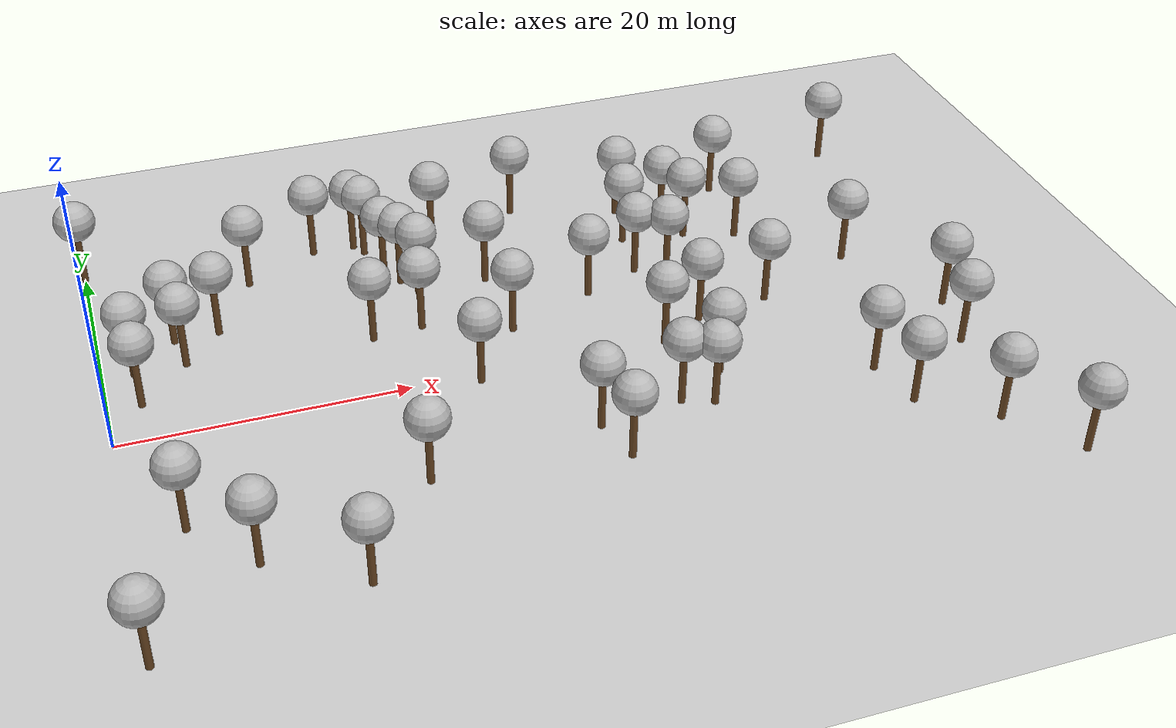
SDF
<sdf version='1.7'>
            <world name='default'>
                <light name='sun' type='directional'>
                <cast_shadows>1</cast_shadows>
                <pose>0 0 10 0 -0 0</pose>
                <diffuse>0.8 0.8 0.8 1</diffuse>
                <specular>0.2 0.2 0.2 1</specular>
                <attenuation>
                    <range>1000</range>
                    <constant>0.9</constant>
                    <linear>0.01</linear>
                    <quadratic>0.001</quadratic>
                </attenuation>
                <direction>-0.5 0.1 -0.9</direction>
                <spot>
                    <inner_angle>0</inner_angle>
                    <outer_angle>0</outer_angle>
                    <falloff>0</falloff>
                </spot>
                </light>
                <model name='ground_plane'>
                <static>1</static>
                <link name='link'>
                    <collision name='collision'>
                    <geometry>
                        <plane>
                        <normal>0 0 1</normal>
                        <size>100 100</size>
                        </plane>
                    </geometry>
                    <surface>
                        <contact>
                        <collide_bitmask>65535</collide_bitmask>
                        <ode/>
                        </contact>
                        <friction>
                        <ode>
                            <mu>100</mu>
                            <mu2>50</mu2>
                        </ode>
                        <torsional>
                            <ode/>
                        </torsional>
                        </friction>
                        <bounce/>
                    </surface>
                    <max_contacts>10</max_contacts>
                    </collision>
                    <visual name='visual'>
                    <cast_shadows>0</cast_shadows>
                    <geometry>
                        <plane>
                        <normal>0 0 1</normal>
                        <size>100 100</size>
                        </plane>
                    </geometry>
                    <material>
                        <script>
                        <uri>file://media/materials/scripts/gazebo.material</uri>
                        <name>Gazebo/Grey</name>
                        </script>
                    </material>
                    </visual>
                    <self_collide>0</self_collide>
                    <enable_wind>0</enable_wind>
                    <kinematic>0</kinematic>
                </link>
                </model>
                <gravity>0 0 -9.8</gravity>
                <magnetic_field>6e-06 2.3e-05 -4.2e-05</magnetic_field>
                <atmosphere type='adiabatic'/>
                <physics type='ode'>
                <max_step_size>0.001</max_step_size>
                <real_time_factor>1</real_time_factor>
                <real_time_update_rate>1000</real_time_update_rate>
                </physics>
                <scene>
                <ambient>0.4 0.4 0.4 1</ambient>
                <background>0.7 0.7 0.7 1</background>
                <shadows>1</shadows>
                </scene>
                <wind/>
                <spherical_coordinates>
                <surface_model>EARTH_WGS84</surface_model>
                <latitude_deg>0</latitude_deg>
                <longitude_deg>0</longitude_deg>
                <elevation>0</elevation>
                <heading_deg>0</heading_deg>
                </spherical_coordinates>

    <model name='tree_simple498'>
      <static>1</static>
      <link name='link'>
        <pose frame=''>0 0 0.1 0 -0 0</pose>
        <collision name='collision_trunk'>
          <pose frame=''>0 0 2 0 -0 0</pose>
          <geometry>
            <cylinder>
              <radius>0.25</radius>
              <length>4</length>
            </cylinder>
          </geometry>
        </collision>
        <collision name='collision_treetop'>
          <pose frame=''>0 0 5.2 0 -0 0</pose>
          <geometry>
            <sphere>
              <radius>1.5</radius>
            </sphere>
          </geometry>
        </collision>
        <visual name='trunk'>
          <pose frame=''>0 0 2 0 -0 0</pose>
          <geometry>
            <cylinder>
              <radius>0.25</radius>
              <length>4</length>
            </cylinder>
          </geometry>
          <material>
            <script>
              <uri>model://tree_simple/scripts</uri>
              <uri>model://tree_simple/materials/textures</uri>
              <name>TreeSimple/Trunk</name>
            </script>
          </material>
        </visual>
        <visual name='treetop'>
          <pose frame=''>0 0 5.2 0 -0 0</pose>
          <geometry>
            <sphere>
              <radius>1.5</radius>
            </sphere>
          </geometry>
          <material>
            <script>
              <uri>model://tree_simple/scripts</uri>
              <uri>model://tree_simple/materials/textures</uri>
              <name>TreeSimple/Treetop</name>
            </script>
          </material>
        </visual>
        <self_collide>0</self_collide>
        <kinematic>0</kinematic>
      </link>
      <pose frame=''>0.0 20.0 0 0 -0 0</pose>
    </model>
        <model name='tree_simple497'>
      <static>1</static>
      <link name='link'>
        <pose frame=''>0 0 0.1 0 -0 0</pose>
        <collision name='collision_trunk'>
          <pose frame=''>0 0 2 0 -0 0</pose>
          <geometry>
            <cylinder>
              <radius>0.25</radius>
              <length>4</length>
            </cylinder>
          </geometry>
        </collision>
        <collision name='collision_treetop'>
          <pose frame=''>0 0 5.2 0 -0 0</pose>
          <geometry>
            <sphere>
              <radius>1.5</radius>
            </sphere>
          </geometry>
        </collision>
        <visual name='trunk'>
          <pose frame=''>0 0 2 0 -0 0</pose>
          <geometry>
            <cylinder>
              <radius>0.25</radius>
              <length>4</length>
            </cylinder>
          </geometry>
          <material>
            <script>
              <uri>model://tree_simple/scripts</uri>
              <uri>model://tree_simple/materials/textures</uri>
              <name>TreeSimple/Trunk</name>
            </script>
          </material>
        </visual>
        <visual name='treetop'>
          <pose frame=''>0 0 5.2 0 -0 0</pose>
          <geometry>
            <sphere>
              <radius>1.5</radius>
            </sphere>
          </geometry>
          <material>
            <script>
              <uri>model://tree_simple/scripts</uri>
              <uri>model://tree_simple/materials/textures</uri>
              <name>TreeSimple/Treetop</name>
            </script>
          </material>
        </visual>
        <self_collide>0</self_collide>
        <kinematic>0</kinematic>
      </link>
      <pose frame=''>0.0 -20.0 0 0 -0 0</pose>
    </model>
        <model name='tree_simple496'>
      <static>1</static>
      <link name='link'>
        <pose frame=''>0 0 0.1 0 -0 0</pose>
        <collision name='collision_trunk'>
          <pose frame=''>0 0 2 0 -0 0</pose>
          <geometry>
            <cylinder>
              <radius>0.25</radius>
              <length>4</length>
            </cylinder>
          </geometry>
        </collision>
        <collision name='collision_treetop'>
          <pose frame=''>0 0 5.2 0 -0 0</pose>
          <geometry>
            <sphere>
              <radius>1.5</radius>
            </sphere>
          </geometry>
        </collision>
        <visual name='trunk'>
          <pose frame=''>0 0 2 0 -0 0</pose>
          <geometry>
            <cylinder>
              <radius>0.25</radius>
              <length>4</length>
            </cylinder>
          </geometry>
          <material>
            <script>
              <uri>model://tree_simple/scripts</uri>
              <uri>model://tree_simple/materials/textures</uri>
              <name>TreeSimple/Trunk</name>
            </script>
          </material>
        </visual>
        <visual name='treetop'>
          <pose frame=''>0 0 5.2 0 -0 0</pose>
          <geometry>
            <sphere>
              <radius>1.5</radius>
            </sphere>
          </geometry>
          <material>
            <script>
              <uri>model://tree_simple/scripts</uri>
              <uri>model://tree_simple/materials/textures</uri>
              <name>TreeSimple/Treetop</name>
            </script>
          </material>
        </visual>
        <self_collide>0</self_collide>
        <kinematic>0</kinematic>
      </link>
      <pose frame=''>60.0 20.0 0 0 -0 0</pose>
    </model>
        <model name='tree_simple495'>
      <static>1</static>
      <link name='link'>
        <pose frame=''>0 0 0.1 0 -0 0</pose>
        <collision name='collision_trunk'>
          <pose frame=''>0 0 2 0 -0 0</pose>
          <geometry>
            <cylinder>
              <radius>0.25</radius>
              <length>4</length>
            </cylinder>
          </geometry>
        </collision>
        <collision name='collision_treetop'>
          <pose frame=''>0 0 5.2 0 -0 0</pose>
          <geometry>
            <sphere>
              <radius>1.5</radius>
            </sphere>
          </geometry>
        </collision>
        <visual name='trunk'>
          <pose frame=''>0 0 2 0 -0 0</pose>
          <geometry>
            <cylinder>
              <radius>0.25</radius>
              <length>4</length>
            </cylinder>
          </geometry>
          <material>
            <script>
              <uri>model://tree_simple/scripts</uri>
              <uri>model://tree_simple/materials/textures</uri>
              <name>TreeSimple/Trunk</name>
            </script>
          </material>
        </visual>
        <visual name='treetop'>
          <pose frame=''>0 0 5.2 0 -0 0</pose>
          <geometry>
            <sphere>
              <radius>1.5</radius>
            </sphere>
          </geometry>
          <material>
            <script>
              <uri>model://tree_simple/scripts</uri>
              <uri>model://tree_simple/materials/textures</uri>
              <name>TreeSimple/Treetop</name>
            </script>
          </material>
        </visual>
        <self_collide>0</self_collide>
        <kinematic>0</kinematic>
      </link>
      <pose frame=''>60.0 -20.0 0 0 -0 0</pose>
    </model>
    <model name="tree_5_0"><pose frame="">40.6 -4.87 0 0 -0 0</pose><static>1</static><link name="link"><pose frame="">0 0 0.1 0 -0 0</pose><collision name="collision_trunk"><pose frame="">0 0 2 0 -0 0</pose><geometry><cylinder><radius>0.25</radius><length>4</length></cylinder></geometry></collision><collision name="collision_treetop"><pose frame="">0 0 5.2 0 -0 0</pose><geometry><sphere><radius>1.5</radius></sphere></geometry></collision><visual name="trunk"><pose frame="">0 0 2 0 -0 0</pose><geometry><cylinder><radius>0.25</radius><length>4</length></cylinder></geometry><material><script><uri>model://tree_simple/scripts</uri><uri>model://tree_simple/materials/textures</uri><name>TreeSimple/Trunk</name></script></material></visual><visual name="treetop"><pose frame="">0 0 5.2 0 -0 0</pose><geometry><sphere><radius>1.5</radius></sphere></geometry><material><script><uri>model://tree_simple/scripts</uri><uri>model://tree_simple/materials/textures</uri><name>TreeSimple/Treetop</name></script></material></visual><self_collide>0</self_collide><kinematic>0</kinematic></link></model><model name="tree_5_1"><pose frame="">21.35 13.83 0 0 -0 0</pose><static>1</static><link name="link"><pose frame="">0 0 0.1 0 -0 0</pose><collision name="collision_trunk"><pose frame="">0 0 2 0 -0 0</pose><geometry><cylinder><radius>0.25</radius><length>4</length></cylinder></geometry></collision><collision name="collision_treetop"><pose frame="">0 0 5.2 0 -0 0</pose><geometry><sphere><radius>1.5</radius></sphere></geometry></collision><visual name="trunk"><pose frame="">0 0 2 0 -0 0</pose><geometry><cylinder><radius>0.25</radius><length>4</length></cylinder></geometry><material><script><uri>model://tree_simple/scripts</uri><uri>model://tree_simple/materials/textures</uri><name>TreeSimple/Trunk</name></script></material></visual><visual name="treetop"><pose frame="">0 0 5.2 0 -0 0</pose><geometry><sphere><radius>1.5</radius></sphere></geometry><material><script><uri>model://tree_simple/scripts</uri><uri>model://tree_simple/materials/textures</uri><name>TreeSimple/Treetop</name></script></material></visual><self_collide>0</self_collide><kinematic>0</kinematic></link></model><model name="tree_5_2"><pose frame="">51.8 -11.95 0 0 -0 0</pose><static>1</static><link name="link"><pose frame="">0 0 0.1 0 -0 0</pose><collision name="collision_trunk"><pose frame="">0 0 2 0 -0 0</pose><geometry><cylinder><radius>0.25</radius><length>4</length></cylinder></geometry></collision><collision name="collision_treetop"><pose frame="">0 0 5.2 0 -0 0</pose><geometry><sphere><radius>1.5</radius></sphere></geometry></collision><visual name="trunk"><pose frame="">0 0 2 0 -0 0</pose><geometry><cylinder><radius>0.25</radius><length>4</length></cylinder></geometry><material><script><uri>model://tree_simple/scripts</uri><uri>model://tree_simple/materials/textures</uri><name>TreeSimple/Trunk</name></script></material></visual><visual name="treetop"><pose frame="">0 0 5.2 0 -0 0</pose><geometry><sphere><radius>1.5</radius></sphere></geometry><material><script><uri>model://tree_simple/scripts</uri><uri>model://tree_simple/materials/textures</uri><name>TreeSimple/Treetop</name></script></material></visual><self_collide>0</self_collide><kinematic>0</kinematic></link></model><model name="tree_5_3"><pose frame="">48.45 10.85 0 0 -0 0</pose><static>1</static><link name="link"><pose frame="">0 0 0.1 0 -0 0</pose><collision name="collision_trunk"><pose frame="">0 0 2 0 -0 0</pose><geometry><cylinder><radius>0.25</radius><length>4</length></cylinder></geometry></collision><collision name="collision_treetop"><pose frame="">0 0 5.2 0 -0 0</pose><geometry><sphere><radius>1.5</radius></sphere></geometry></collision><visual name="trunk"><pose frame="">0 0 2 0 -0 0</pose><geometry><cylinder><radius>0.25</radius><length>4</length></cylinder></geometry><material><script><uri>model://tree_simple/scripts</uri><uri>model://tree_simple/materials/textures</uri><name>TreeSimple/Trunk</name></script></material></visual><visual name="treetop"><pose frame="">0 0 5.2 0 -0 0</pose><geometry><sphere><radius>1.5</radius></sphere></geometry><material><script><uri>model://tree_simple/scripts</uri><uri>model://tree_simple/materials/textures</uri><name>TreeSimple/Treetop</name></script></material></visual><self_collide>0</self_collide><kinematic>0</kinematic></link></model><model name="tree_5_4"><pose frame="">44.68 12.06 0 0 -0 0</pose><static>1</static><link name="link"><pose frame="">0 0 0.1 0 -0 0</pose><collision name="collision_trunk"><pose frame="">0 0 2 0 -0 0</pose><geometry><cylinder><radius>0.25</radius><length>4</length></cylinder></geometry></collision><collision name="collision_treetop"><pose frame="">0 0 5.2 0 -0 0</pose><geometry><sphere><radius>1.5</radius></sphere></geometry></collision><visual name="trunk"><pose frame="">0 0 2 0 -0 0</pose><geometry><cylinder><radius>0.25</radius><length>4</length></cylinder></geometry><material><script><uri>model://tree_simple/scripts</uri><uri>model://tree_simple/materials/textures</uri><name>TreeSimple/Trunk</name></script></material></visual><visual name="treetop"><pose frame="">0 0 5.2 0 -0 0</pose><geometry><sphere><radius>1.5</radius></sphere></geometry><material><script><uri>model://tree_simple/scripts</uri><uri>model://tree_simple/materials/textures</uri><name>TreeSimple/Treetop</name></script></material></visual><self_collide>0</self_collide><kinematic>0</kinematic></link></model><model name="tree_5_5"><pose frame="">2.17 7.18 0 0 -0 0</pose><static>1</static><link name="link"><pose frame="">0 0 0.1 0 -0 0</pose><collision name="collision_trunk"><pose frame="">0 0 2 0 -0 0</pose><geometry><cylinder><radius>0.25</radius><length>4</length></cylinder></geometry></collision><collision name="collision_treetop"><pose frame="">0 0 5.2 0 -0 0</pose><geometry><sphere><radius>1.5</radius></sphere></geometry></collision><visual name="trunk"><pose frame="">0 0 2 0 -0 0</pose><geometry><cylinder><radius>0.25</radius><length>4</length></cylinder></geometry><material><script><uri>model://tree_simple/scripts</uri><uri>model://tree_simple/materials/textures</uri><name>TreeSimple/Trunk</name></script></material></visual><visual name="treetop"><pose frame="">0 0 5.2 0 -0 0</pose><geometry><sphere><radius>1.5</radius></sphere></geometry><material><script><uri>model://tree_simple/scripts</uri><uri>model://tree_simple/materials/textures</uri><name>TreeSimple/Treetop</name></script></material></visual><self_collide>0</self_collide><kinematic>0</kinematic></link></model><model name="tree_5_6"><pose frame="">23.23 10.79 0 0 -0 0</pose><static>1</static><link name="link"><pose frame="">0 0 0.1 0 -0 0</pose><collision name="collision_trunk"><pose frame="">0 0 2 0 -0 0</pose><geometry><cylinder><radius>0.25</radius><length>4</length></cylinder></geometry></collision><collision name="collision_treetop"><pose frame="">0 0 5.2 0 -0 0</pose><geometry><sphere><radius>1.5</radius></sphere></geometry></collision><visual name="trunk"><pose frame="">0 0 2 0 -0 0</pose><geometry><cylinder><radius>0.25</radius><length>4</length></cylinder></geometry><material><script><uri>model://tree_simple/scripts</uri><uri>model://tree_simple/materials/textures</uri><name>TreeSimple/Trunk</name></script></material></visual><visual name="treetop"><pose frame="">0 0 5.2 0 -0 0</pose><geometry><sphere><radius>1.5</radius></sphere></geometry><material><script><uri>model://tree_simple/scripts</uri><uri>model://tree_simple/materials/textures</uri><name>TreeSimple/Treetop</name></script></material></visual><self_collide>0</self_collide><kinematic>0</kinematic></link></model><model name="tree_5_7"><pose frame="">22.3 12.55 0 0 -0 0</pose><static>1</static><link name="link"><pose frame="">0 0 0.1 0 -0 0</pose><collision name="collision_trunk"><pose frame="">0 0 2 0 -0 0</pose><geometry><cylinder><radius>0.25</radius><length>4</length></cylinder></geometry></collision><collision name="collision_treetop"><pose frame="">0 0 5.2 0 -0 0</pose><geometry><sphere><radius>1.5</radius></sphere></geometry></collision><visual name="trunk"><pose frame="">0 0 2 0 -0 0</pose><geometry><cylinder><radius>0.25</radius><length>4</length></cylinder></geometry><material><script><uri>model://tree_simple/scripts</uri><uri>model://tree_simple/materials/textures</uri><name>TreeSimple/Trunk</name></script></material></visual><visual name="treetop"><pose frame="">0 0 5.2 0 -0 0</pose><geometry><sphere><radius>1.5</radius></sphere></geometry><material><script><uri>model://tree_simple/scripts</uri><uri>model://tree_simple/materials/textures</uri><name>TreeSimple/Treetop</name></script></material></visual><self_collide>0</self_collide><kinematic>0</kinematic></link></model><model name="tree_5_8"><pose frame="">20.58 17.2 0 0 -0 0</pose><static>1</static><link name="link"><pose frame="">0 0 0.1 0 -0 0</pose><collision name="collision_trunk"><pose frame="">0 0 2 0 -0 0</pose><geometry><cylinder><radius>0.25</radius><length>4</length></cylinder></geometry></collision><collision name="collision_treetop"><pose frame="">0 0 5.2 0 -0 0</pose><geometry><sphere><radius>1.5</radius></sphere></geometry></collision><visual name="trunk"><pose frame="">0 0 2 0 -0 0</pose><geometry><cylinder><radius>0.25</radius><length>4</length></cylinder></geometry><material><script><uri>model://tree_simple/scripts</uri><uri>model://tree_simple/materials/textures</uri><name>TreeSimple/Trunk</name></script></material></visual><visual name="treetop"><pose frame="">0 0 5.2 0 -0 0</pose><geometry><sphere><radius>1.5</radius></sphere></geometry><material><script><uri>model://tree_simple/scripts</uri><uri>model://tree_simple/materials/textures</uri><name>TreeSimple/Treetop</name></script></material></visual><self_collide>0</self_collide><kinematic>0</kinematic></link></model><model name="tree_5_9"><pose frame="">2.28 3.62 0 0 -0 0</pose><static>1</static><link name="link"><pose frame="">0 0 0.1 0 -0 0</pose><collision name="collision_trunk"><pose frame="">0 0 2 0 -0 0</pose><geometry><cylinder><radius>0.25</radius><length>4</length></cylinder></geometry></collision><collision name="collision_treetop"><pose frame="">0 0 5.2 0 -0 0</pose><geometry><sphere><radius>1.5</radius></sphere></geometry></collision><visual name="trunk"><pose frame="">0 0 2 0 -0 0</pose><geometry><cylinder><radius>0.25</radius><length>4</length></cylinder></geometry><material><script><uri>model://tree_simple/scripts</uri><uri>model://tree_simple/materials/textures</uri><name>TreeSimple/Trunk</name></script></material></visual><visual name="treetop"><pose frame="">0 0 5.2 0 -0 0</pose><geometry><sphere><radius>1.5</radius></sphere></geometry><material><script><uri>model://tree_simple/scripts</uri><uri>model://tree_simple/materials/textures</uri><name>TreeSimple/Treetop</name></script></material></visual><self_collide>0</self_collide><kinematic>0</kinematic></link></model><model name="tree_5_10"><pose frame="">38.21 -0.61 0 0 -0 0</pose><static>1</static><link name="link"><pose frame="">0 0 0.1 0 -0 0</pose><collision name="collision_trunk"><pose frame="">0 0 2 0 -0 0</pose><geometry><cylinder><radius>0.25</radius><length>4</length></cylinder></geometry></collision><collision name="collision_treetop"><pose frame="">0 0 5.2 0 -0 0</pose><geometry><sphere><radius>1.5</radius></sphere></geometry></collision><visual name="trunk"><pose frame="">0 0 2 0 -0 0</pose><geometry><cylinder><radius>0.25</radius><length>4</length></cylinder></geometry><material><script><uri>model://tree_simple/scripts</uri><uri>model://tree_simple/materials/textures</uri><name>TreeSimple/Trunk</name></script></material></visual><visual name="treetop"><pose frame="">0 0 5.2 0 -0 0</pose><geometry><sphere><radius>1.5</radius></sphere></geometry><material><script><uri>model://tree_simple/scripts</uri><uri>model://tree_simple/materials/textures</uri><name>TreeSimple/Treetop</name></script></material></visual><self_collide>0</self_collide><kinematic>0</kinematic></link></model><model name="tree_5_11"><pose frame="">25.99 17.57 0 0 -0 0</pose><static>1</static><link name="link"><pose frame="">0 0 0.1 0 -0 0</pose><collision name="collision_trunk"><pose frame="">0 0 2 0 -0 0</pose><geometry><cylinder><radius>0.25</radius><length>4</length></cylinder></geometry></collision><collision name="collision_treetop"><pose frame="">0 0 5.2 0 -0 0</pose><geometry><sphere><radius>1.5</radius></sphere></geometry></collision><visual name="trunk"><pose frame="">0 0 2 0 -0 0</pose><geometry><cylinder><radius>0.25</radius><length>4</length></cylinder></geometry><material><script><uri>model://tree_simple/scripts</uri><uri>model://tree_simple/materials/textures</uri><name>TreeSimple/Trunk</name></script></material></visual><visual name="treetop"><pose frame="">0 0 5.2 0 -0 0</pose><geometry><sphere><radius>1.5</radius></sphere></geometry><material><script><uri>model://tree_simple/scripts</uri><uri>model://tree_simple/materials/textures</uri><name>TreeSimple/Treetop</name></script></material></visual><self_collide>0</self_collide><kinematic>0</kinematic></link></model><model name="tree_5_12"><pose frame="">5.31 10.15 0 0 -0 0</pose><static>1</static><link name="link"><pose frame="">0 0 0.1 0 -0 0</pose><collision name="collision_trunk"><pose frame="">0 0 2 0 -0 0</pose><geometry><cylinder><radius>0.25</radius><length>4</length></cylinder></geometry></collision><collision name="collision_treetop"><pose frame="">0 0 5.2 0 -0 0</pose><geometry><sphere><radius>1.5</radius></sphere></geometry></collision><visual name="trunk"><pose frame="">0 0 2 0 -0 0</pose><geometry><cylinder><radius>0.25</radius><length>4</length></cylinder></geometry><material><script><uri>model://tree_simple/scripts</uri><uri>model://tree_simple/materials/textures</uri><name>TreeSimple/Trunk</name></script></material></visual><visual name="treetop"><pose frame="">0 0 5.2 0 -0 0</pose><geometry><sphere><radius>1.5</radius></sphere></geometry><material><script><uri>model://tree_simple/scripts</uri><uri>model://tree_simple/materials/textures</uri><name>TreeSimple/Treetop</name></script></material></visual><self_collide>0</self_collide><kinematic>0</kinematic></link></model><model name="tree_5_13"><pose frame="">28.46 4.15 0 0 -0 0</pose><static>1</static><link name="link"><pose frame="">0 0 0.1 0 -0 0</pose><collision name="collision_trunk"><pose frame="">0 0 2 0 -0 0</pose><geometry><cylinder><radius>0.25</radius><length>4</length></cylinder></geometry></collision><collision name="collision_treetop"><pose frame="">0 0 5.2 0 -0 0</pose><geometry><sphere><radius>1.5</radius></sphere></geometry></collision><visual name="trunk"><pose frame="">0 0 2 0 -0 0</pose><geometry><cylinder><radius>0.25</radius><length>4</length></cylinder></geometry><material><script><uri>model://tree_simple/scripts</uri><uri>model://tree_simple/materials/textures</uri><name>TreeSimple/Trunk</name></script></material></visual><visual name="treetop"><pose frame="">0 0 5.2 0 -0 0</pose><geometry><sphere><radius>1.5</radius></sphere></geometry><material><script><uri>model://tree_simple/scripts</uri><uri>model://tree_simple/materials/textures</uri><name>TreeSimple/Treetop</name></script></material></visual><self_collide>0</self_collide><kinematic>0</kinematic></link></model><model name="tree_5_14"><pose frame="">38.95 -8.0 0 0 -0 0</pose><static>1</static><link name="link"><pose frame="">0 0 0.1 0 -0 0</pose><collision name="collision_trunk"><pose frame="">0 0 2 0 -0 0</pose><geometry><cylinder><radius>0.25</radius><length>4</length></cylinder></geometry></collision><collision name="collision_treetop"><pose frame="">0 0 5.2 0 -0 0</pose><geometry><sphere><radius>1.5</radius></sphere></geometry></collision><visual name="trunk"><pose frame="">0 0 2 0 -0 0</pose><geometry><cylinder><radius>0.25</radius><length>4</length></cylinder></geometry><material><script><uri>model://tree_simple/scripts</uri><uri>model://tree_simple/materials/textures</uri><name>TreeSimple/Trunk</name></script></material></visual><visual name="treetop"><pose frame="">0 0 5.2 0 -0 0</pose><geometry><sphere><radius>1.5</radius></sphere></geometry><material><script><uri>model://tree_simple/scripts</uri><uri>model://tree_simple/materials/textures</uri><name>TreeSimple/Treetop</name></script></material></visual><self_collide>0</self_collide><kinematic>0</kinematic></link></model><model name="tree_5_15"><pose frame="">30.85 -8.01 0 0 -0 0</pose><static>1</static><link name="link"><pose frame="">0 0 0.1 0 -0 0</pose><collision name="collision_trunk"><pose frame="">0 0 2 0 -0 0</pose><geometry><cylinder><radius>0.25</radius><length>4</length></cylinder></geometry></collision><collision name="collision_treetop"><pose frame="">0 0 5.2 0 -0 0</pose><geometry><sphere><radius>1.5</radius></sphere></geometry></collision><visual name="trunk"><pose frame="">0 0 2 0 -0 0</pose><geometry><cylinder><radius>0.25</radius><length>4</length></cylinder></geometry><material><script><uri>model://tree_simple/scripts</uri><uri>model://tree_simple/materials/textures</uri><name>TreeSimple/Trunk</name></script></material></visual><visual name="treetop"><pose frame="">0 0 5.2 0 -0 0</pose><geometry><sphere><radius>1.5</radius></sphere></geometry><material><script><uri>model://tree_simple/scripts</uri><uri>model://tree_simple/materials/textures</uri><name>TreeSimple/Treetop</name></script></material></visual><self_collide>0</self_collide><kinematic>0</kinematic></link></model><model name="tree_5_16"><pose frame="">39.34 8.56 0 0 -0 0</pose><static>1</static><link name="link"><pose frame="">0 0 0.1 0 -0 0</pose><collision name="collision_trunk"><pose frame="">0 0 2 0 -0 0</pose><geometry><cylinder><radius>0.25</radius><length>4</length></cylinder></geometry></collision><collision name="collision_treetop"><pose frame="">0 0 5.2 0 -0 0</pose><geometry><sphere><radius>1.5</radius></sphere></geometry></collision><visual name="trunk"><pose frame="">0 0 2 0 -0 0</pose><geometry><cylinder><radius>0.25</radius><length>4</length></cylinder></geometry><material><script><uri>model://tree_simple/scripts</uri><uri>model://tree_simple/materials/textures</uri><name>TreeSimple/Trunk</name></script></material></visual><visual name="treetop"><pose frame="">0 0 5.2 0 -0 0</pose><geometry><sphere><radius>1.5</radius></sphere></geometry><material><script><uri>model://tree_simple/scripts</uri><uri>model://tree_simple/materials/textures</uri><name>TreeSimple/Treetop</name></script></material></visual><self_collide>0</self_collide><kinematic>0</kinematic></link></model><model name="tree_5_17"><pose frame="">19.97 18.23 0 0 -0 0</pose><static>1</static><link name="link"><pose frame="">0 0 0.1 0 -0 0</pose><collision name="collision_trunk"><pose frame="">0 0 2 0 -0 0</pose><geometry><cylinder><radius>0.25</radius><length>4</length></cylinder></geometry></collision><collision name="collision_treetop"><pose frame="">0 0 5.2 0 -0 0</pose><geometry><sphere><radius>1.5</radius></sphere></geometry></collision><visual name="trunk"><pose frame="">0 0 2 0 -0 0</pose><geometry><cylinder><radius>0.25</radius><length>4</length></cylinder></geometry><material><script><uri>model://tree_simple/scripts</uri><uri>model://tree_simple/materials/textures</uri><name>TreeSimple/Trunk</name></script></material></visual><visual name="treetop"><pose frame="">0 0 5.2 0 -0 0</pose><geometry><sphere><radius>1.5</radius></sphere></geometry><material><script><uri>model://tree_simple/scripts</uri><uri>model://tree_simple/materials/textures</uri><name>TreeSimple/Treetop</name></script></material></visual><self_collide>0</self_collide><kinematic>0</kinematic></link></model><model name="tree_5_18"><pose frame="">3.44 -9.51 0 0 -0 0</pose><static>1</static><link name="link"><pose frame="">0 0 0.1 0 -0 0</pose><collision name="collision_trunk"><pose frame="">0 0 2 0 -0 0</pose><geometry><cylinder><radius>0.25</radius><length>4</length></cylinder></geometry></collision><collision name="collision_treetop"><pose frame="">0 0 5.2 0 -0 0</pose><geometry><sphere><radius>1.5</radius></sphere></geometry></collision><visual name="trunk"><pose frame="">0 0 2 0 -0 0</pose><geometry><cylinder><radius>0.25</radius><length>4</length></cylinder></geometry><material><script><uri>model://tree_simple/scripts</uri><uri>model://tree_simple/materials/textures</uri><name>TreeSimple/Trunk</name></script></material></visual><visual name="treetop"><pose frame="">0 0 5.2 0 -0 0</pose><geometry><sphere><radius>1.5</radius></sphere></geometry><material><script><uri>model://tree_simple/scripts</uri><uri>model://tree_simple/materials/textures</uri><name>TreeSimple/Treetop</name></script></material></visual><self_collide>0</self_collide><kinematic>0</kinematic></link></model><model name="tree_5_19"><pose frame="">58.21 -6.94 0 0 -0 0</pose><static>1</static><link name="link"><pose frame="">0 0 0.1 0 -0 0</pose><collision name="collision_trunk"><pose frame="">0 0 2 0 -0 0</pose><geometry><cylinder><radius>0.25</radius><length>4</length></cylinder></geometry></collision><collision name="collision_treetop"><pose frame="">0 0 5.2 0 -0 0</pose><geometry><sphere><radius>1.5</radius></sphere></geometry></collision><visual name="trunk"><pose frame="">0 0 2 0 -0 0</pose><geometry><cylinder><radius>0.25</radius><length>4</length></cylinder></geometry><material><script><uri>model://tree_simple/scripts</uri><uri>model://tree_simple/materials/textures</uri><name>TreeSimple/Trunk</name></script></material></visual><visual name="treetop"><pose frame="">0 0 5.2 0 -0 0</pose><geometry><sphere><radius>1.5</radius></sphere></geometry><material><script><uri>model://tree_simple/scripts</uri><uri>model://tree_simple/materials/textures</uri><name>TreeSimple/Treetop</name></script></material></visual><self_collide>0</self_collide><kinematic>0</kinematic></link></model><model name="tree_5_20"><pose frame="">50.86 -7.92 0 0 -0 0</pose><static>1</static><link name="link"><pose frame="">0 0 0.1 0 -0 0</pose><collision name="collision_trunk"><pose frame="">0 0 2 0 -0 0</pose><geometry><cylinder><radius>0.25</radius><length>4</length></cylinder></geometry></collision><collision name="collision_treetop"><pose frame="">0 0 5.2 0 -0 0</pose><geometry><sphere><radius>1.5</radius></sphere></geometry></collision><visual name="trunk"><pose frame="">0 0 2 0 -0 0</pose><geometry><cylinder><radius>0.25</radius><length>4</length></cylinder></geometry><material><script><uri>model://tree_simple/scripts</uri><uri>model://tree_simple/materials/textures</uri><name>TreeSimple/Trunk</name></script></material></visual><visual name="treetop"><pose frame="">0 0 5.2 0 -0 0</pose><geometry><sphere><radius>1.5</radius></sphere></geometry><material><script><uri>model://tree_simple/scripts</uri><uri>model://tree_simple/materials/textures</uri><name>TreeSimple/Treetop</name></script></material></visual><self_collide>0</self_collide><kinematic>0</kinematic></link></model><model name="tree_5_21"><pose frame="">18.75 6.12 0 0 -0 0</pose><static>1</static><link name="link"><pose frame="">0 0 0.1 0 -0 0</pose><collision name="collision_trunk"><pose frame="">0 0 2 0 -0 0</pose><geometry><cylinder><radius>0.25</radius><length>4</length></cylinder></geometry></collision><collision name="collision_treetop"><pose frame="">0 0 5.2 0 -0 0</pose><geometry><sphere><radius>1.5</radius></sphere></geometry></collision><visual name="trunk"><pose frame="">0 0 2 0 -0 0</pose><geometry><cylinder><radius>0.25</radius><length>4</length></cylinder></geometry><material><script><uri>model://tree_simple/scripts</uri><uri>model://tree_simple/materials/textures</uri><name>TreeSimple/Trunk</name></script></material></visual><visual name="treetop"><pose frame="">0 0 5.2 0 -0 0</pose><geometry><sphere><radius>1.5</radius></sphere></geometry><material><script><uri>model://tree_simple/scripts</uri><uri>model://tree_simple/materials/textures</uri><name>TreeSimple/Treetop</name></script></material></visual><self_collide>0</self_collide><kinematic>0</kinematic></link></model><model name="tree_5_22"><pose frame="">35.03 6.75 0 0 -0 0</pose><static>1</static><link name="link"><pose frame="">0 0 0.1 0 -0 0</pose><collision name="collision_trunk"><pose frame="">0 0 2 0 -0 0</pose><geometry><cylinder><radius>0.25</radius><length>4</length></cylinder></geometry></collision><collision name="collision_treetop"><pose frame="">0 0 5.2 0 -0 0</pose><geometry><sphere><radius>1.5</radius></sphere></geometry></collision><visual name="trunk"><pose frame="">0 0 2 0 -0 0</pose><geometry><cylinder><radius>0.25</radius><length>4</length></cylinder></geometry><material><script><uri>model://tree_simple/scripts</uri><uri>model://tree_simple/materials/textures</uri><name>TreeSimple/Trunk</name></script></material></visual><visual name="treetop"><pose frame="">0 0 5.2 0 -0 0</pose><geometry><sphere><radius>1.5</radius></sphere></geometry><material><script><uri>model://tree_simple/scripts</uri><uri>model://tree_simple/materials/textures</uri><name>TreeSimple/Treetop</name></script></material></visual><self_collide>0</self_collide><kinematic>0</kinematic></link></model><model name="tree_5_23"><pose frame="">41.45 7.45 0 0 -0 0</pose><static>1</static><link name="link"><pose frame="">0 0 0.1 0 -0 0</pose><collision name="collision_trunk"><pose frame="">0 0 2 0 -0 0</pose><geometry><cylinder><radius>0.25</radius><length>4</length></cylinder></geometry></collision><collision name="collision_treetop"><pose frame="">0 0 5.2 0 -0 0</pose><geometry><sphere><radius>1.5</radius></sphere></geometry></collision><visual name="trunk"><pose frame="">0 0 2 0 -0 0</pose><geometry><cylinder><radius>0.25</radius><length>4</length></cylinder></geometry><material><script><uri>model://tree_simple/scripts</uri><uri>model://tree_simple/materials/textures</uri><name>TreeSimple/Trunk</name></script></material></visual><visual name="treetop"><pose frame="">0 0 5.2 0 -0 0</pose><geometry><sphere><radius>1.5</radius></sphere></geometry><material><script><uri>model://tree_simple/scripts</uri><uri>model://tree_simple/materials/textures</uri><name>TreeSimple/Treetop</name></script></material></visual><self_collide>0</self_collide><kinematic>0</kinematic></link></model><model name="tree_5_24"><pose frame="">40.79 16.84 0 0 -0 0</pose><static>1</static><link name="link"><pose frame="">0 0 0.1 0 -0 0</pose><collision name="collision_trunk"><pose frame="">0 0 2 0 -0 0</pose><geometry><cylinder><radius>0.25</radius><length>4</length></cylinder></geometry></collision><collision name="collision_treetop"><pose frame="">0 0 5.2 0 -0 0</pose><geometry><sphere><radius>1.5</radius></sphere></geometry></collision><visual name="trunk"><pose frame="">0 0 2 0 -0 0</pose><geometry><cylinder><radius>0.25</radius><length>4</length></cylinder></geometry><material><script><uri>model://tree_simple/scripts</uri><uri>model://tree_simple/materials/textures</uri><name>TreeSimple/Trunk</name></script></material></visual><visual name="treetop"><pose frame="">0 0 5.2 0 -0 0</pose><geometry><sphere><radius>1.5</radius></sphere></geometry><material><script><uri>model://tree_simple/scripts</uri><uri>model://tree_simple/materials/textures</uri><name>TreeSimple/Treetop</name></script></material></visual><self_collide>0</self_collide><kinematic>0</kinematic></link></model>
    <model name="tree_1_21">
  <pose frame="">31.76 -11.45 0 0 -0 0</pose>
  <static>1</static>
  <link name="link">
    <pose frame="">0 0 0.1 0 -0 0</pose>
    <collision name="collision_trunk"><pose frame="">0 0 2 0 -0 0</pose><geometry><cylinder><radius>0.25</radius><length>4</length></cylinder></geometry></collision>
    <collision name="collision_treetop"><pose frame="">0 0 5.2 0 -0 0</pose><geometry><sphere><radius>1.5</radius></sphere></geometry></collision>
    <visual name="trunk"><pose frame="">0 0 2 0 -0 0</pose><geometry><cylinder><radius>0.25</radius><length>4</length></cylinder></geometry><material><script><uri>model://tree_simple/scripts</uri><uri>model://tree_simple/materials/textures</uri><name>TreeSimple/Trunk</name></script></material></visual>
    <visual name="treetop"><pose frame="">0 0 5.2 0 -0 0</pose><geometry><sphere><radius>1.5</radius></sphere></geometry><material><script><uri>model://tree_simple/scripts</uri><uri>model://tree_simple/materials/textures</uri><name>TreeSimple/Treetop</name></script></material></visual>
    <self_collide>0</self_collide><kinematic>0</kinematic>
  </link>
</model>
<model name="tree_1_22">
  <pose frame="">16.89 18.37 0 0 -0 0</pose>
  <static>1</static>
  <link name="link">
    <pose frame="">0 0 0.1 0 -0 0</pose>
    <collision name="collision_trunk"><pose frame="">0 0 2 0 -0 0</pose><geometry><cylinder><radius>0.25</radius><length>4</length></cylinder></geometry></collision>
    <collision name="collision_treetop"><pose frame="">0 0 5.2 0 -0 0</pose><geometry><sphere><radius>1.5</radius></sphere></geometry></collision>
    <visual name="trunk"><pose frame="">0 0 2 0 -0 0</pose><geometry><cylinder><radius>0.25</radius><length>4</length></cylinder></geometry><material><script><uri>model://tree_simple/scripts</uri><uri>model://tree_simple/materials/textures</uri><name>TreeSimple/Trunk</name></script></material></visual>
    <visual name="treetop"><pose frame="">0 0 5.2 0 -0 0</pose><geometry><sphere><radius>1.5</radius></sphere></geometry><material><script><uri>model://tree_simple/scripts</uri><uri>model://tree_simple/materials/textures</uri><name>TreeSimple/Treetop</name></script></material></visual>
    <self_collide>0</self_collide><kinematic>0</kinematic>
  </link>
</model>
<model name="tree_1_23">
  <pose frame="">41.58 1.27 0 0 -0 0</pose>
  <static>1</static>
  <link name="link">
    <pose frame="">0 0 0.1 0 -0 0</pose>
    <collision name="collision_trunk"><pose frame="">0 0 2 0 -0 0</pose><geometry><cylinder><radius>0.25</radius><length>4</length></cylinder></geometry></collision>
    <collision name="collision_treetop"><pose frame="">0 0 5.2 0 -0 0</pose><geometry><sphere><radius>1.5</radius></sphere></geometry></collision>
    <visual name="trunk"><pose frame="">0 0 2 0 -0 0</pose><geometry><cylinder><radius>0.25</radius><length>4</length></cylinder></geometry><material><script><uri>model://tree_simple/scripts</uri><uri>model://tree_simple/materials/textures</uri><name>TreeSimple/Trunk</name></script></material></visual>
    <visual name="treetop"><pose frame="">0 0 5.2 0 -0 0</pose><geometry><sphere><radius>1.5</radius></sphere></geometry><material><script><uri>model://tree_simple/scripts</uri><uri>model://tree_simple/materials/textures</uri><name>TreeSimple/Treetop</name></script></material></visual>
    <self_collide>0</self_collide><kinematic>0</kinematic>
  </link>
</model>
<model name="tree_1_24">
  <pose frame="">7.21 -13.89 0 0 -0 0</pose>
  <static>1</static>
  <link name="link">
    <pose frame="">0 0 0.1 0 -0 0</pose>
    <collision name="collision_trunk"><pose frame="">0 0 2 0 -0 0</pose><geometry><cylinder><radius>0.25</radius><length>4</length></cylinder></geometry></collision>
    <collision name="collision_treetop"><pose frame="">0 0 5.2 0 -0 0</pose><geometry><sphere><radius>1.5</radius></sphere></geometry></collision>
    <visual name="trunk"><pose frame="">0 0 2 0 -0 0</pose><geometry><cylinder><radius>0.25</radius><length>4</length></cylinder></geometry><material><script><uri>model://tree_simple/scripts</uri><uri>model://tree_simple/materials/textures</uri><name>TreeSimple/Trunk</name></script></material></visual>
    <visual name="treetop"><pose frame="">0 0 5.2 0 -0 0</pose><geometry><sphere><radius>1.5</radius></sphere></geometry><material><script><uri>model://tree_simple/scripts</uri><uri>model://tree_simple/materials/textures</uri><name>TreeSimple/Treetop</name></script></material></visual>
    <self_collide>0</self_collide><kinematic>0</kinematic>
  </link>
</model>
<model name="tree_1_25">
  <pose frame="">54.92 5.34 0 0 -0 0</pose>
  <static>1</static>
  <link name="link">
    <pose frame="">0 0 0.1 0 -0 0</pose>
    <collision name="collision_trunk"><pose frame="">0 0 2 0 -0 0</pose><geometry><cylinder><radius>0.25</radius><length>4</length></cylinder></geometry></collision>
    <collision name="collision_treetop"><pose frame="">0 0 5.2 0 -0 0</pose><geometry><sphere><radius>1.5</radius></sphere></geometry></collision>
    <visual name="trunk"><pose frame="">0 0 2 0 -0 0</pose><geometry><cylinder><radius>0.25</radius><length>4</length></cylinder></geometry><material><script><uri>model://tree_simple/scripts</uri><uri>model://tree_simple/materials/textures</uri><name>TreeSimple/Trunk</name></script></material></visual>
    <visual name="treetop"><pose frame="">0 0 5.2 0 -0 0</pose><geometry><sphere><radius>1.5</radius></sphere></geometry><material><script><uri>model://tree_simple/scripts</uri><uri>model://tree_simple/materials/textures</uri><name>TreeSimple/Treetop</name></script></material></visual>
    <self_collide>0</self_collide><kinematic>0</kinematic>
  </link>
</model>
<model name="tree_1_26">
  <pose frame="">28.34 10.85 0 0 -0 0</pose>
  <static>1</static>
  <link name="link">
    <pose frame="">0 0 0.1 0 -0 0</pose>
    <collision name="collision_trunk"><pose frame="">0 0 2 0 -0 0</pose><geometry><cylinder><radius>0.25</radius><length>4</length></cylinder></geometry></collision>
    <collision name="collision_treetop"><pose frame="">0 0 5.2 0 -0 0</pose><geometry><sphere><radius>1.5</radius></sphere></geometry></collision>
    <visual name="trunk"><pose frame="">0 0 2 0 -0 0</pose><geometry><cylinder><radius>0.25</radius><length>4</length></cylinder></geometry><material><script><uri>model://tree_simple/scripts</uri><uri>model://tree_simple/materials/textures</uri><name>TreeSimple/Trunk</name></script></material></visual>
    <visual name="treetop"><pose frame="">0 0 5.2 0 -0 0</pose><geometry><sphere><radius>1.5</radius></sphere></geometry><material><script><uri>model://tree_simple/scripts</uri><uri>model://tree_simple/materials/textures</uri><name>TreeSimple/Treetop</name></script></material></visual>
    <self_collide>0</self_collide><kinematic>0</kinematic>
  </link>
</model>
<model name="tree_1_27">
  <pose frame="">13.25 -17.52 0 0 -0 0</pose>
  <static>1</static>
  <link name="link">
    <pose frame="">0 0 0.1 0 -0 0</pose>
    <collision name="collision_trunk"><pose frame="">0 0 2 0 -0 0</pose><geometry><cylinder><radius>0.25</radius><length>4</length></cylinder></geometry></collision>
    <collision name="collision_treetop"><pose frame="">0 0 5.2 0 -0 0</pose><geometry><sphere><radius>1.5</radius></sphere></geometry></collision>
    <visual name="trunk"><pose frame="">0 0 2 0 -0 0</pose><geometry><cylinder><radius>0.25</radius><length>4</length></cylinder></geometry><material><script><uri>model://tree_simple/scripts</uri><uri>model://tree_simple/materials/textures</uri><name>TreeSimple/Trunk</name></script></material></visual>
    <visual name="treetop"><pose frame="">0 0 5.2 0 -0 0</pose><geometry><sphere><radius>1.5</radius></sphere></geometry><material><script><uri>model://tree_simple/scripts</uri><uri>model://tree_simple/materials/textures</uri><name>TreeSimple/Treetop</name></script></material></visual>
    <self_collide>0</self_collide><kinematic>0</kinematic>
  </link>
</model>
<model name="tree_1_28">
  <pose frame="">49.18 17.64 0 0 -0 0</pose>
  <static>1</static>
  <link name="link">
    <pose frame="">0 0 0.1 0 -0 0</pose>
    <collision name="collision_trunk"><pose frame="">0 0 2 0 -0 0</pose><geometry><cylinder><radius>0.25</radius><length>4</length></cylinder></geometry></collision>
    <collision name="collision_treetop"><pose frame="">0 0 5.2 0 -0 0</pose><geometry><sphere><radius>1.5</radius></sphere></geometry></collision>
    <visual name="trunk"><pose frame="">0 0 2 0 -0 0</pose><geometry><cylinder><radius>0.25</radius><length>4</length></cylinder></geometry><material><script><uri>model://tree_simple/scripts</uri><uri>model://tree_simple/materials/textures</uri><name>TreeSimple/Trunk</name></script></material></visual>
    <visual name="treetop"><pose frame="">0 0 5.2 0 -0 0</pose><geometry><sphere><radius>1.5</radius></sphere></geometry><material><script><uri>model://tree_simple/scripts</uri><uri>model://tree_simple/materials/textures</uri><name>TreeSimple/Treetop</name></script></material></visual>
    <self_collide>0</self_collide><kinematic>0</kinematic>
  </link>
</model>
<model name="tree_1_29">
  <pose frame="">24.67 -0.89 0 0 -0 0</pose>
  <static>1</static>
  <link name="link">
    <pose frame="">0 0 0.1 0 -0 0</pose>
    <collision name="collision_trunk"><pose frame="">0 0 2 0 -0 0</pose><geometry><cylinder><radius>0.25</radius><length>4</length></cylinder></geometry></collision>
    <collision name="collision_treetop"><pose frame="">0 0 5.2 0 -0 0</pose><geometry><sphere><radius>1.5</radius></sphere></geometry></collision>
    <visual name="trunk"><pose frame="">0 0 2 0 -0 0</pose><geometry><cylinder><radius>0.25</radius><length>4</length></cylinder></geometry><material><script><uri>model://tree_simple/scripts</uri><uri>model://tree_simple/materials/textures</uri><name>TreeSimple/Trunk</name></script></material></visual>
    <visual name="treetop"><pose frame="">0 0 5.2 0 -0 0</pose><geometry><sphere><radius>1.5</radius></sphere></geometry><material><script><uri>model://tree_simple/scripts</uri><uri>model://tree_simple/materials/textures</uri><name>TreeSimple/Treetop</name></script></material></visual>
    <self_collide>0</self_collide><kinematic>0</kinematic>
  </link>
</model>
<model name="tree_1_30">
  <pose frame="">39.93 12.78 0 0 -0 0</pose>
  <static>1</static>
  <link name="link">
    <pose frame="">0 0 0.1 0 -0 0</pose>
    <collision name="collision_trunk"><pose frame="">0 0 2 0 -0 0</pose><geometry><cylinder><radius>0.25</radius><length>4</length></cylinder></geometry></collision>
    <collision name="collision_treetop"><pose frame="">0 0 5.2 0 -0 0</pose><geometry><sphere><radius>1.5</radius></sphere></geometry></collision>
    <visual name="trunk"><pose frame="">0 0 2 0 -0 0</pose><geometry><cylinder><radius>0.25</radius><length>4</length></cylinder></geometry><material><script><uri>model://tree_simple/scripts</uri><uri>model://tree_simple/materials/textures</uri><name>TreeSimple/Trunk</name></script></material></visual>
    <visual name="treetop"><pose frame="">0 0 5.2 0 -0 0</pose><geometry><sphere><radius>1.5</radius></sphere></geometry><material><script><uri>model://tree_simple/scripts</uri><uri>model://tree_simple/materials/textures</uri><name>TreeSimple/Treetop</name></script></material></visual>
    <self_collide>0</self_collide><kinematic>0</kinematic>
  </link>
</model>
<model name="tree_1_31">
  <pose frame="">5.74 7.23 0 0 -0 0</pose>
  <static>1</static>
  <link name="link">
    <pose frame="">0 0 0.1 0 -0 0</pose>
    <collision name="collision_trunk"><pose frame="">0 0 2 0 -0 0</pose><geometry><cylinder><radius>0.25</radius><length>4</length></cylinder></geometry></collision>
    <collision name="collision_treetop"><pose frame="">0 0 5.2 0 -0 0</pose><geometry><sphere><radius>1.5</radius></sphere></geometry></collision>
    <visual name="trunk"><pose frame="">0 0 2 0 -0 0</pose><geometry><cylinder><radius>0.25</radius><length>4</length></cylinder></geometry><material><script><uri>model://tree_simple/scripts</uri><uri>model://tree_simple/materials/textures</uri><name>TreeSimple/Trunk</name></script></material></visual>
    <visual name="treetop"><pose frame="">0 0 5.2 0 -0 0</pose><geometry><sphere><radius>1.5</radius></sphere></geometry><material><script><uri>model://tree_simple/scripts</uri><uri>model://tree_simple/materials/textures</uri><name>TreeSimple/Treetop</name></script></material></visual>
    <self_collide>0</self_collide><kinematic>0</kinematic>
  </link>
</model>
<model name="tree_1_32">
  <pose frame="">56.43 -15.38 0 0 -0 0</pose>
  <static>1</static>
  <link name="link">
    <pose frame="">0 0 0.1 0 -0 0</pose>
    <collision name="collision_trunk"><pose frame="">0 0 2 0 -0 0</pose><geometry><cylinder><radius>0.25</radius><length>4</length></cylinder></geometry></collision>
    <collision name="collision_treetop"><pose frame="">0 0 5.2 0 -0 0</pose><geometry><sphere><radius>1.5</radius></sphere></geometry></collision>
    <visual name="trunk"><pose frame="">0 0 2 0 -0 0</pose><geometry><cylinder><radius>0.25</radius><length>4</length></cylinder></geometry><material><script><uri>model://tree_simple/scripts</uri><uri>model://tree_simple/materials/textures</uri><name>TreeSimple/Trunk</name></script></material></visual>
    <visual name="treetop"><pose frame="">0 0 5.2 0 -0 0</pose><geometry><sphere><radius>1.5</radius></sphere></geometry><material><script><uri>model://tree_simple/scripts</uri><uri>model://tree_simple/materials/textures</uri><name>TreeSimple/Treetop</name></script></material></visual>
    <self_collide>0</self_collide><kinematic>0</kinematic>
  </link>
</model>
<model name="tree_1_33">
  <pose frame="">32.89 19.42 0 0 -0 0</pose>
  <static>1</static>
  <link name="link">
    <pose frame="">0 0 0.1 0 -0 0</pose>
    <collision name="collision_trunk"><pose frame="">0 0 2 0 -0 0</pose><geometry><cylinder><radius>0.25</radius><length>4</length></cylinder></geometry></collision>
    <collision name="collision_treetop"><pose frame="">0 0 5.2 0 -0 0</pose><geometry><sphere><radius>1.5</radius></sphere></geometry></collision>
    <visual name="trunk"><pose frame="">0 0 2 0 -0 0</pose><geometry><cylinder><radius>0.25</radius><length>4</length></cylinder></geometry><material><script><uri>model://tree_simple/scripts</uri><uri>model://tree_simple/materials/textures</uri><name>TreeSimple/Trunk</name></script></material></visual>
    <visual name="treetop"><pose frame="">0 0 5.2 0 -0 0</pose><geometry><sphere><radius>1.5</radius></sphere></geometry><material><script><uri>model://tree_simple/scripts</uri><uri>model://tree_simple/materials/textures</uri><name>TreeSimple/Treetop</name></script></material></visual>
    <self_collide>0</self_collide><kinematic>0</kinematic>
  </link>
</model>
<model name="tree_1_34">
  <pose frame="">18.76 -9.84 0 0 -0 0</pose>
  <static>1</static>
  <link name="link">
    <pose frame="">0 0 0.1 0 -0 0</pose>
    <collision name="collision_trunk"><pose frame="">0 0 2 0 -0 0</pose><geometry><cylinder><radius>0.25</radius><length>4</length></cylinder></geometry></collision>
    <collision name="collision_treetop"><pose frame="">0 0 5.2 0 -0 0</pose><geometry><sphere><radius>1.5</radius></sphere></geometry></collision>
    <visual name="trunk"><pose frame="">0 0 2 0 -0 0</pose><geometry><cylinder><radius>0.25</radius><length>4</length></cylinder></geometry><material><script><uri>model://tree_simple/scripts</uri><uri>model://tree_simple/materials/textures</uri><name>TreeSimple/Trunk</name></script></material></visual>
    <visual name="treetop"><pose frame="">0 0 5.2 0 -0 0</pose><geometry><sphere><radius>1.5</radius></sphere></geometry><material><script><uri>model://tree_simple/scripts</uri><uri>model://tree_simple/materials/textures</uri><name>TreeSimple/Treetop</name></script></material></visual>
    <self_collide>0</self_collide><kinematic>0</kinematic>
  </link>
</model>
<model name="tree_1_35">
  <pose frame="">47.12 2.16 0 0 -0 0</pose>
  <static>1</static>
  <link name="link">
    <pose frame="">0 0 0.1 0 -0 0</pose>
    <collision name="collision_trunk"><pose frame="">0 0 2 0 -0 0</pose><geometry><cylinder><radius>0.25</radius><length>4</length></cylinder></geometry></collision>
    <collision name="collision_treetop"><pose frame="">0 0 5.2 0 -0 0</pose><geometry><sphere><radius>1.5</radius></sphere></geometry></collision>
    <visual name="trunk"><pose frame="">0 0 2 0 -0 0</pose><geometry><cylinder><radius>0.25</radius><length>4</length></cylinder></geometry><material><script><uri>model://tree_simple/scripts</uri><uri>model://tree_simple/materials/textures</uri><name>TreeSimple/Trunk</name></script></material></visual>
    <visual name="treetop"><pose frame="">0 0 5.2 0 -0 0</pose><geometry><sphere><radius>1.5</radius></sphere></geometry><material><script><uri>model://tree_simple/scripts</uri><uri>model://tree_simple/materials/textures</uri><name>TreeSimple/Treetop</name></script></material></visual>
    <self_collide>0</self_collide><kinematic>0</kinematic>
  </link>
</model>
<model name="tree_1_36">
  <pose frame="">11.53 15.67 0 0 -0 0</pose>
  <static>1</static>
  <link name="link">
    <pose frame="">0 0 0.1 0 -0 0</pose>
    <collision name="collision_trunk"><pose frame="">0 0 2 0 -0 0</pose><geometry><cylinder><radius>0.25</radius><length>4</length></cylinder></geometry></collision>
    <collision name="collision_treetop"><pose frame="">0 0 5.2 0 -0 0</pose><geometry><sphere><radius>1.5</radius></sphere></geometry></collision>
    <visual name="trunk"><pose frame="">0 0 2 0 -0 0</pose><geometry><cylinder><radius>0.25</radius><length>4</length></cylinder></geometry><material><script><uri>model://tree_simple/scripts</uri><uri>model://tree_simple/materials/textures</uri><name>TreeSimple/Trunk</name></script></material></visual>
    <visual name="treetop"><pose frame="">0 0 5.2 0 -0 0</pose><geometry><sphere><radius>1.5</radius></sphere></geometry><material><script><uri>model://tree_simple/scripts</uri><uri>model://tree_simple/materials/textures</uri><name>TreeSimple/Treetop</name></script></material></visual>
    <self_collide>0</self_collide><kinematic>0</kinematic>
  </link>
</model>
<model name="tree_1_37">
  <pose frame="">36.84 -7.21 0 0 -0 0</pose>
  <static>1</static>
  <link name="link">
    <pose frame="">0 0 0.1 0 -0 0</pose>
    <collision name="collision_trunk"><pose frame="">0 0 2 0 -0 0</pose><geometry><cylinder><radius>0.25</radius><length>4</length></cylinder></geometry></collision>
    <collision name="collision_treetop"><pose frame="">0 0 5.2 0 -0 0</pose><geometry><sphere><radius>1.5</radius></sphere></geometry></collision>
    <visual name="trunk"><pose frame="">0 0 2 0 -0 0</pose><geometry><cylinder><radius>0.25</radius><length>4</length></cylinder></geometry><material><script><uri>model://tree_simple/scripts</uri><uri>model://tree_simple/materials/textures</uri><name>TreeSimple/Trunk</name></script></material></visual>
    <visual name="treetop"><pose frame="">0 0 5.2 0 -0 0</pose><geometry><sphere><radius>1.5</radius></sphere></geometry><material><script><uri>model://tree_simple/scripts</uri><uri>model://tree_simple/materials/textures</uri><name>TreeSimple/Treetop</name></script></material></visual>
    <self_collide>0</self_collide><kinematic>0</kinematic>
  </link>
</model>
<model name="tree_1_38">
  <pose frame="">22.37 6.49 0 0 -0 0</pose>
  <static>1</static>
  <link name="link">
    <pose frame="">0 0 0.1 0 -0 0</pose>
    <collision name="collision_trunk"><pose frame="">0 0 2 0 -0 0</pose><geometry><cylinder><radius>0.25</radius><length>4</length></cylinder></geometry></collision>
    <collision name="collision_treetop"><pose frame="">0 0 5.2 0 -0 0</pose><geometry><sphere><radius>1.5</radius></sphere></geometry></collision>
    <visual name="trunk"><pose frame="">0 0 2 0 -0 0</pose><geometry><cylinder><radius>0.25</radius><length>4</length></cylinder></geometry><material><script><uri>model://tree_simple/scripts</uri><uri>model://tree_simple/materials/textures</uri><name>TreeSimple/Trunk</name></script></material></visual>
    <visual name="treetop"><pose frame="">0 0 5.2 0 -0 0</pose><geometry><sphere><radius>1.5</radius></sphere></geometry><material><script><uri>model://tree_simple/scripts</uri><uri>model://tree_simple/materials/textures</uri><name>TreeSimple/Treetop</name></script></material></visual>
    <self_collide>0</self_collide><kinematic>0</kinematic>
  </link>
</model>
<model name="tree_1_39">
  <pose frame="">59.28 -2.35 0 0 -0 0</pose>
  <static>1</static>
  <link name="link">
    <pose frame="">0 0 0.1 0 -0 0</pose>
    <collision name="collision_trunk"><pose frame="">0 0 2 0 -0 0</pose><geometry><cylinder><radius>0.25</radius><length>4</length></cylinder></geometry></collision>
    <collision name="collision_treetop"><pose frame="">0 0 5.2 0 -0 0</pose><geometry><sphere><radius>1.5</radius></sphere></geometry></collision>
    <visual name="trunk"><pose frame="">0 0 2 0 -0 0</pose><geometry><cylinder><radius>0.25</radius><length>4</length></cylinder></geometry><material><script><uri>model://tree_simple/scripts</uri><uri>model://tree_simple/materials/textures</uri><name>TreeSimple/Trunk</name></script></material></visual>
    <visual name="treetop"><pose frame="">0 0 5.2 0 -0 0</pose><geometry><sphere><radius>1.5</radius></sphere></geometry><material><script><uri>model://tree_simple/scripts</uri><uri>model://tree_simple/materials/textures</uri><name>TreeSimple/Treetop</name></script></material></visual>
    <self_collide>0</self_collide><kinematic>0</kinematic>
  </link>
</model>
<model name="tree_1_40">
  <pose frame="">8.46 10.28 0 0 -0 0</pose>
  <static>1</static>
  <link name="link">
    <pose frame="">0 0 0.1 0 -0 0</pose>
    <collision name="collision_trunk"><pose frame="">0 0 2 0 -0 0</pose><geometry><cylinder><radius>0.25</radius><length>4</length></cylinder></geometry></collision>
    <collision name="collision_treetop"><pose frame="">0 0 5.2 0 -0 0</pose><geometry><sphere><radius>1.5</radius></sphere></geometry></collision>
    <visual name="trunk"><pose frame="">0 0 2 0 -0 0</pose><geometry><cylinder><radius>0.25</radius><length>4</length></cylinder></geometry><material><script><uri>model://tree_simple/scripts</uri><uri>model://tree_simple/materials/textures</uri><name>TreeSimple/Trunk</name></script></material></visual>
    <visual name="treetop"><pose frame="">0 0 5.2 0 -0 0</pose><geometry><sphere><radius>1.5</radius></sphere></geometry><material><script><uri>model://tree_simple/scripts</uri><uri>model://tree_simple/materials/textures</uri><name>TreeSimple/Treetop</name></script></material></visual>
    <self_collide>0</self_collide><kinematic>0</kinematic>
  </link>
</model>
<model name="tree_1_41">
  <pose frame="">43.65 14.32 0 0 -0 0</pose>
  <static>1</static>
  <link name="link">
    <pose frame="">0 0 0.1 0 -0 0</pose>
    <collision name="collision_trunk"><pose frame="">0 0 2 0 -0 0</pose><geometry><cylinder><radius>0.25</radius><length>4</length></cylinder></geometry></collision>
    <collision name="collision_treetop"><pose frame="">0 0 5.2 0 -0 0</pose><geometry><sphere><radius>1.5</radius></sphere></geometry></collision>
    <visual name="trunk"><pose frame="">0 0 2 0 -0 0</pose><geometry><cylinder><radius>0.25</radius><length>4</length></cylinder></geometry><material><script><uri>model://tree_simple/scripts</uri><uri>model://tree_simple/materials/textures</uri><name>TreeSimple/Trunk</name></script></material></visual>
    <visual name="treetop"><pose frame="">0 0 5.2 0 -0 0</pose><geometry><sphere><radius>1.5</radius></sphere></geometry><material><script><uri>model://tree_simple/scripts</uri><uri>model://tree_simple/materials/textures</uri><name>TreeSimple/Treetop</name></script></material></visual>
    <self_collide>0</self_collide><kinematic>0</kinematic>
  </link>
</model>
            </world>
            </sdf>
